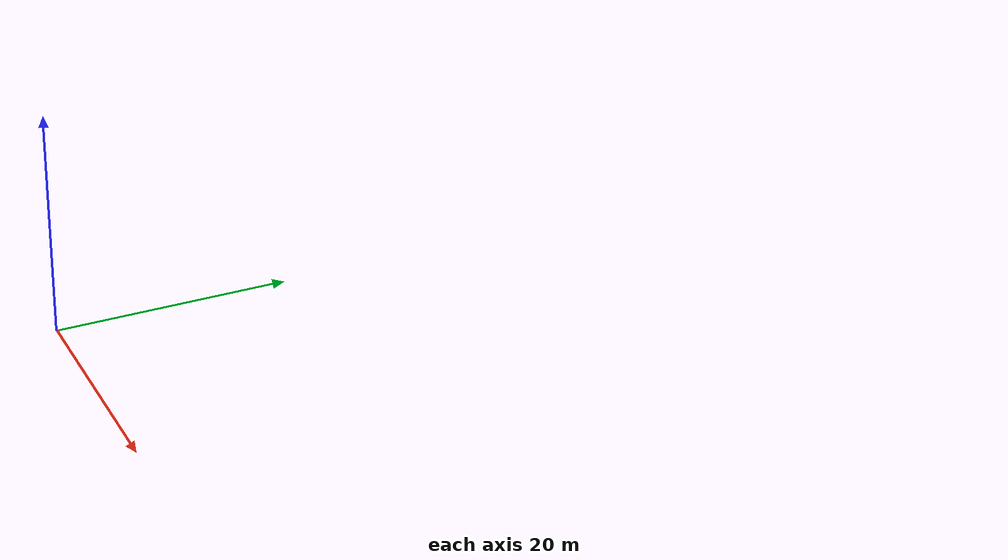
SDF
<?xml version="1.0" encoding="UTF-8"?>
  <sdf version="1.11" intrinsic="https://intrinsic.ai/">
  <model name='egk_25'>
    <link name='SCHUNK_1491752_EGK_25_PN_M_B_000ohne0'>
      <inertial>
        <pose>0 41.979 0 0 -0 0</pose>
        <mass>0.15</mass>
        <inertia>
          <ixx>132.168</ixx>
          <ixy>0</ixy>
          <ixz>0</ixz>
          <iyy>88.5258</iyy>
          <iyz>0</iyz>
          <izz>220.693</izz>
        </inertia>
      </inertial>
      <collision name='SCHUNK_1491752_EGK_25_PN_M_B_000ohne0_fixed_joint_lump__SCHUNK__Gehaeuse_EGK_25_PN_EI_0_0_collision'>
        <pose>0 0 0 0 -0 0</pose>
        <geometry>
          <mesh>
            <scale>0.001 0.001 0.001</scale>
            <uri>SCHUNK__Gehaeuse_EGK_25_PN_EI_0_1.obj</uri>
          </mesh>
        </geometry>
      </collision>
      <collision name='SCHUNK_1491752_EGK_25_PN_M_B_000ohne0_fixed_joint_lump__SCHUNK__Gehaeuse_EGK_25_PN_EI_0_0_collision_1'>
        <pose>0 0 0 0 -0 0</pose>
        <geometry>
          <mesh>
            <scale>0.001 0.001 0.001</scale>
            <uri>SCHUNK__Gehaeuse_EGK_25_PN_EI_0_2.obj</uri>
          </mesh>
        </geometry>
      </collision>
      <collision name='SCHUNK_1491752_EGK_25_PN_M_B_000ohne0_fixed_joint_lump__SCHUNK__Gehaeuse_EGK_25_PN_EI_0_0_collision_2'>
        <pose>0 0 0 0 -0 0</pose>
        <geometry>
          <mesh>
            <scale>0.001 0.001 0.001</scale>
            <uri>SCHUNK__Gehaeuse_EGK_25_PN_EI_0_3.obj</uri>
          </mesh>
        </geometry>
      </collision>
      <collision name='SCHUNK_1491752_EGK_25_PN_M_B_000ohne0_fixed_joint_lump__SCHUNK__Gehaeuse_EGK_25_PN_EI_0_0_collision_3'>
        <pose>0 0 0 0 -0 0</pose>
        <geometry>
          <mesh>
            <scale>0.001 0.001 0.001</scale>
            <uri>SCHUNK__Gehaeuse_EGK_25_PN_EI_0_4.obj</uri>
          </mesh>
        </geometry>
      </collision>
      <collision name='SCHUNK_1491752_EGK_25_PN_M_B_000ohne0_fixed_joint_lump__SCHUNK_9905503_Typenschild_11x43x0_3_1_collision_4'>
        <pose>29.7532 62.9684 0 -3.10669 -1.5708 0</pose>
        <geometry>
          <mesh>
            <scale>0.001 0.001 0.001</scale>
            <uri>SCHUNK_9905503_Typenschild_11x43x0_3_5.obj</uri>
          </mesh>
        </geometry>
      </collision>
      <collision name='SCHUNK_1491752_EGK_25_PN_M_B_000ohne0_fixed_joint_lump__SCHUNK_9905503_Typenschild_11x43x0_3_1_collision_5'>
        <pose>29.7532 62.9684 0 -3.10669 -1.5708 0</pose>
        <geometry>
          <mesh>
            <scale>0.001 0.001 0.001</scale>
            <uri>SCHUNK_9905503_Typenschild_11x43x0_3_6.obj</uri>
          </mesh>
        </geometry>
      </collision>
      <collision name='SCHUNK_1491752_EGK_25_PN_M_B_000ohne0_fixed_joint_lump__SCHUNK_9905503_Typenschild_11x43x0_3_1_collision_6'>
        <pose>29.7532 62.9684 0 -3.10669 -1.5708 0</pose>
        <geometry>
          <mesh>
            <scale>0.001 0.001 0.001</scale>
            <uri>SCHUNK_9905503_Typenschild_11x43x0_3_7.obj</uri>
          </mesh>
        </geometry>
      </collision>
      <collision name='SCHUNK_1491752_EGK_25_PN_M_B_000ohne0_fixed_joint_lump__SCHUNK_9905503_Typenschild_11x43x0_3_1_collision_7'>
        <pose>29.7532 62.9684 0 -3.10669 -1.5708 0</pose>
        <geometry>
          <mesh>
            <scale>0.001 0.001 0.001</scale>
            <uri>SCHUNK_9905503_Typenschild_11x43x0_3_8.obj</uri>
          </mesh>
        </geometry>
      </collision>
      <collision name='SCHUNK_1491752_EGK_25_PN_M_B_000ohne0_fixed_joint_lump__SCHUNK_9905503_Typenschild_11x43x0_3_2_collision_8'>
        <pose>-29.7532 62.9684 -0 -3.10669 1.5708 0</pose>
        <geometry>
          <mesh>
            <scale>0.001 0.001 0.001</scale>
            <uri>SCHUNK_9905503_Typenschild_11x43x0_3_9.obj</uri>
          </mesh>
        </geometry>
      </collision>
      <collision name='SCHUNK_1491752_EGK_25_PN_M_B_000ohne0_fixed_joint_lump__SCHUNK_9905503_Typenschild_11x43x0_3_2_collision_9'>
        <pose>-29.7532 62.9684 -0 -3.10669 1.5708 0</pose>
        <geometry>
          <mesh>
            <scale>0.001 0.001 0.001</scale>
            <uri>SCHUNK_9905503_Typenschild_11x43x0_3_10.obj</uri>
          </mesh>
        </geometry>
      </collision>
      <collision name='SCHUNK_1491752_EGK_25_PN_M_B_000ohne0_fixed_joint_lump__SCHUNK_9905503_Typenschild_11x43x0_3_2_collision_10'>
        <pose>-29.7532 62.9684 -0 -3.10669 1.5708 0</pose>
        <geometry>
          <mesh>
            <scale>0.001 0.001 0.001</scale>
            <uri>SCHUNK_9905503_Typenschild_11x43x0_3_11.obj</uri>
          </mesh>
        </geometry>
      </collision>
      <collision name='SCHUNK_1491752_EGK_25_PN_M_B_000ohne0_fixed_joint_lump__SCHUNK_9905503_Typenschild_11x43x0_3_2_collision_11'>
        <pose>-29.7532 62.9684 -0 -3.10669 1.5708 0</pose>
        <geometry>
          <mesh>
            <scale>0.001 0.001 0.001</scale>
            <uri>SCHUNK_9905503_Typenschild_11x43x0_3_12.obj</uri>
          </mesh>
        </geometry>
      </collision>
      <visual name='SCHUNK_1491752_EGK_25_PN_M_B_000ohne0_fixed_joint_lump__SCHUNK__Gehaeuse_EGK_25_PN_EI_0_0_visual'>
        <pose>0 0 0 0 -0 0</pose>
        <geometry>
          <mesh>
            <scale>0.001 0.001 0.001</scale>
            <uri>SCHUNK__Gehaeuse_EGK_25_PN_EI_0_1.obj</uri>
          </mesh>
        </geometry>
      </visual>
      <visual name='SCHUNK_1491752_EGK_25_PN_M_B_000ohne0_fixed_joint_lump__SCHUNK__Gehaeuse_EGK_25_PN_EI_0_0_visual_1'>
        <pose>0 0 0 0 -0 0</pose>
        <geometry>
          <mesh>
            <scale>0.001 0.001 0.001</scale>
            <uri>SCHUNK__Gehaeuse_EGK_25_PN_EI_0_2.obj</uri>
          </mesh>
        </geometry>
      </visual>
      <visual name='SCHUNK_1491752_EGK_25_PN_M_B_000ohne0_fixed_joint_lump__SCHUNK__Gehaeuse_EGK_25_PN_EI_0_0_visual_2'>
        <pose>0 0 0 0 -0 0</pose>
        <geometry>
          <mesh>
            <scale>0.001 0.001 0.001</scale>
            <uri>SCHUNK__Gehaeuse_EGK_25_PN_EI_0_3.obj</uri>
          </mesh>
        </geometry>
      </visual>
      <visual name='SCHUNK_1491752_EGK_25_PN_M_B_000ohne0_fixed_joint_lump__SCHUNK__Gehaeuse_EGK_25_PN_EI_0_0_visual_3'>
        <pose>0 0 0 0 -0 0</pose>
        <geometry>
          <mesh>
            <scale>0.001 0.001 0.001</scale>
            <uri>SCHUNK__Gehaeuse_EGK_25_PN_EI_0_4.obj</uri>
          </mesh>
        </geometry>
      </visual>
      <visual name='SCHUNK_1491752_EGK_25_PN_M_B_000ohne0_fixed_joint_lump__SCHUNK_9905503_Typenschild_11x43x0_3_1_visual_4'>
        <pose>29.7532 62.9684 0 -3.10669 -1.5708 0</pose>
        <geometry>
          <mesh>
            <scale>0.001 0.001 0.001</scale>
            <uri>SCHUNK_9905503_Typenschild_11x43x0_3_5.obj</uri>
          </mesh>
        </geometry>
      </visual>
      <visual name='SCHUNK_1491752_EGK_25_PN_M_B_000ohne0_fixed_joint_lump__SCHUNK_9905503_Typenschild_11x43x0_3_1_visual_5'>
        <pose>29.7532 62.9684 0 -3.10669 -1.5708 0</pose>
        <geometry>
          <mesh>
            <scale>0.001 0.001 0.001</scale>
            <uri>SCHUNK_9905503_Typenschild_11x43x0_3_6.obj</uri>
          </mesh>
        </geometry>
      </visual>
      <visual name='SCHUNK_1491752_EGK_25_PN_M_B_000ohne0_fixed_joint_lump__SCHUNK_9905503_Typenschild_11x43x0_3_1_visual_6'>
        <pose>29.7532 62.9684 0 -3.10669 -1.5708 0</pose>
        <geometry>
          <mesh>
            <scale>0.001 0.001 0.001</scale>
            <uri>SCHUNK_9905503_Typenschild_11x43x0_3_7.obj</uri>
          </mesh>
        </geometry>
      </visual>
      <visual name='SCHUNK_1491752_EGK_25_PN_M_B_000ohne0_fixed_joint_lump__SCHUNK_9905503_Typenschild_11x43x0_3_1_visual_7'>
        <pose>29.7532 62.9684 0 -3.10669 -1.5708 0</pose>
        <geometry>
          <mesh>
            <scale>0.001 0.001 0.001</scale>
            <uri>SCHUNK_9905503_Typenschild_11x43x0_3_8.obj</uri>
          </mesh>
        </geometry>
      </visual>
      <visual name='SCHUNK_1491752_EGK_25_PN_M_B_000ohne0_fixed_joint_lump__SCHUNK_9905503_Typenschild_11x43x0_3_2_visual_8'>
        <pose>-29.7532 62.9684 -0 -3.10669 1.5708 0</pose>
        <geometry>
          <mesh>
            <scale>0.001 0.001 0.001</scale>
            <uri>SCHUNK_9905503_Typenschild_11x43x0_3_9.obj</uri>
          </mesh>
        </geometry>
      </visual>
      <visual name='SCHUNK_1491752_EGK_25_PN_M_B_000ohne0_fixed_joint_lump__SCHUNK_9905503_Typenschild_11x43x0_3_2_visual_9'>
        <pose>-29.7532 62.9684 -0 -3.10669 1.5708 0</pose>
        <geometry>
          <mesh>
            <scale>0.001 0.001 0.001</scale>
            <uri>SCHUNK_9905503_Typenschild_11x43x0_3_10.obj</uri>
          </mesh>
        </geometry>
      </visual>
      <visual name='SCHUNK_1491752_EGK_25_PN_M_B_000ohne0_fixed_joint_lump__SCHUNK_9905503_Typenschild_11x43x0_3_2_visual_10'>
        <pose>-29.7532 62.9684 -0 -3.10669 1.5708 0</pose>
        <geometry>
          <mesh>
            <scale>0.001 0.001 0.001</scale>
            <uri>SCHUNK_9905503_Typenschild_11x43x0_3_11.obj</uri>
          </mesh>
        </geometry>
      </visual>
      <visual name='SCHUNK_1491752_EGK_25_PN_M_B_000ohne0_fixed_joint_lump__SCHUNK_9905503_Typenschild_11x43x0_3_2_visual_11'>
        <pose>-29.7532 62.9684 -0 -3.10669 1.5708 0</pose>
        <geometry>
          <mesh>
            <scale>0.001 0.001 0.001</scale>
            <uri>SCHUNK_9905503_Typenschild_11x43x0_3_12.obj</uri>
          </mesh>
        </geometry>
      </visual>
    </link>
    <joint name='Finger_Drive' type='prismatic'>
      <pose relative_to='SCHUNK_1491752_EGK_25_PN_M_B_000ohne0'>0 3e-06 0 0 0 0</pose>
      <parent>SCHUNK_1491752_EGK_25_PN_M_B_000ohne0</parent>
      <child>SCHUNK_1500102Grundbacke_EGK_25_3</child>
      <axis>
        <xyz>0 0 1</xyz>
        <limit>
          <lower>0</lower>
          <upper>26.5</upper>
          <effort>1e+07</effort>
          <velocity>0</velocity>
        </limit>
        <dynamics>
          <spring_reference>0</spring_reference>
          <spring_stiffness>0</spring_stiffness>
        </dynamics>
      </axis>
    </joint>
    <link name='SCHUNK_1500102Grundbacke_EGK_25_3'>
      <pose relative_to='Finger_Drive'>0 0 0 0 -0 0</pose>
      <inertial>
        <pose>0 0 0 0 -0 0</pose>
        <mass>0.05</mass>
        <inertia>
          <ixx>0.0001</ixx>
          <ixy>0</ixy>
          <ixz>0</ixz>
          <iyy>0.0001</iyy>
          <iyz>0</iyz>
          <izz>0.0001</izz>
        </inertia>
      </inertial>
      <collision name='SCHUNK_1500102Grundbacke_EGK_25_3_collision'>
        <pose>-13.14 70.2 -13.25 0 1.5708 0</pose>
        <geometry>
          <mesh>
            <scale>0.001 0.001 0.001</scale>
            <uri>SCHUNK_1500102Grundbacke_EGK_25_13.obj</uri>
          </mesh>
        </geometry>
      </collision>
      <visual name='SCHUNK_1500102Grundbacke_EGK_25_3_visual'>
        <pose>-13.14 70.2 -13.25 0 1.5708 0</pose>
        <geometry>
          <mesh>
            <scale>0.001 0.001 0.001</scale>
            <uri>SCHUNK_1500102Grundbacke_EGK_25_13.obj</uri>
          </mesh>
        </geometry>
      </visual>
    </link>
    <joint name='PrismaticJoint0' type='prismatic'>
      <pose relative_to='SCHUNK_1491752_EGK_25_PN_M_B_000ohne0'>-0 3e-06 0 0 -0 0</pose>
      <parent>SCHUNK_1491752_EGK_25_PN_M_B_000ohne0</parent>
      <child>SCHUNK_1500102Grundbacke_EGK_25_4</child>
      <axis>
        <xyz>0 0 1</xyz>
        <limit>
          <lower>-26.5</lower>
          <upper>0</upper>
          <effort>0</effort>
          <velocity>0</velocity>
        </limit>
        <dynamics>
          <spring_reference>0</spring_reference>
          <spring_stiffness>0</spring_stiffness>
        </dynamics>
      </axis>
    </joint>
    <link name='SCHUNK_1500102Grundbacke_EGK_25_4'>
      <pose relative_to='PrismaticJoint0'>0 0 0 0 -0 0</pose>
      <inertial>
        <pose>0 0 0 0 -0 0</pose>
        <mass>0.05</mass>
        <inertia>
          <ixx>0.0001</ixx>
          <ixy>0</ixy>
          <ixz>0</ixz>
          <iyy>0.0001</iyy>
          <iyz>0</iyz>
          <izz>0.0001</izz>
        </inertia>
      </inertial>
      <collision name='SCHUNK_1500102Grundbacke_EGK_25_4_collision'>
        <pose>13.14 70.2 13.25 0 -1.5708 0</pose>
        <geometry>
          <mesh>
            <scale>0.001 0.001 0.001</scale>
            <uri>SCHUNK_1500102Grundbacke_EGK_25_14.obj</uri>
          </mesh>
        </geometry>
      </collision>
      <visual name='SCHUNK_1500102Grundbacke_EGK_25_4_visual'>
        <pose>13.14 70.2 13.25 0 -1.5708 0</pose>
        <geometry>
          <mesh>
            <scale>0.001 0.001 0.001</scale>
            <uri>SCHUNK_1500102Grundbacke_EGK_25_14.obj</uri>
          </mesh>
        </geometry>
      </visual>
    </link>
  </model>
  </sdf>
